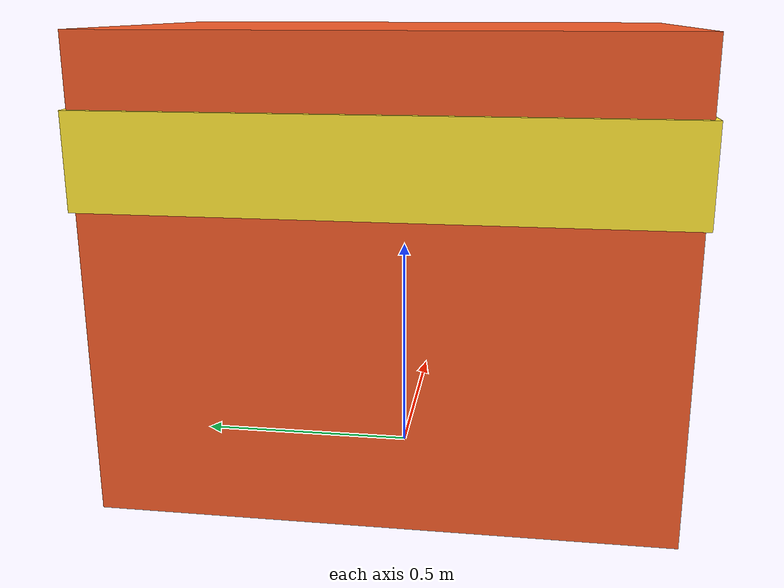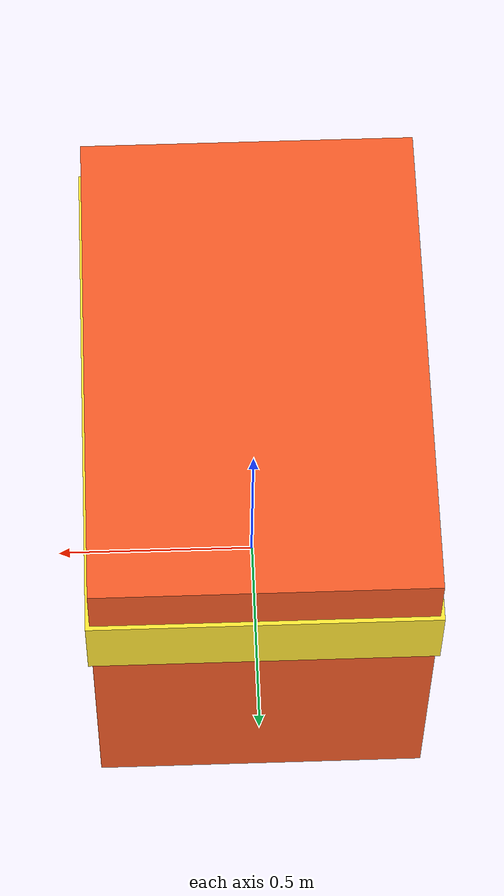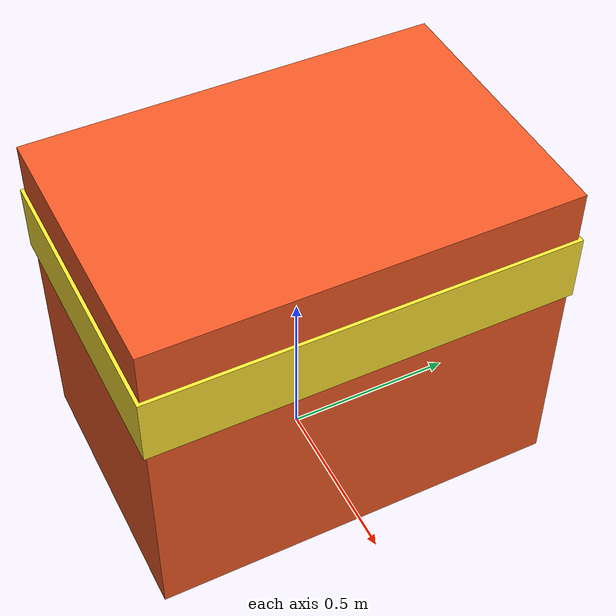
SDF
<?xml version="1.0"?>
<sdf version="1.9">
  <model name="blocked_aisle_obstacle">
    <static>false</static>
    <link name="obstacle_link">
      <pose>0 0 0.5 0 0 0</pose>
      <inertial>
        <mass>50.0</mass>
        <inertia>
          <ixx>10.0</ixx>
          <iyy>10.0</iyy>
          <izz>10.0</izz>
          <ixy>0</ixy>
          <ixz>0</ixz>
          <iyz>0</iyz>
        </inertia>
      </inertial>
      <collision name="collision">
        <geometry>
          <box>
            <size>0.8 1.2 1.0</size>
          </box>
        </geometry>
      </collision>
      <visual name="visual">
        <geometry>
          <box>
            <size>0.8 1.2 1.0</size>
          </box>
        </geometry>
        <material>
          <ambient>0.85 0.25 0.1 1.0</ambient>
          <diffuse>0.95 0.35 0.15 1.0</diffuse>
        </material>
      </visual>
      <!-- Visual hazard marker stripe -->
      <visual name="hazard_stripe">
        <pose>0 0 0.25 0 0 0</pose>
        <geometry>
          <box>
            <size>0.82 1.22 0.2</size>
          </box>
        </geometry>
        <material>
          <ambient>0.9 0.8 0.1 1.0</ambient>
          <diffuse>1.0 0.9 0.2 1.0</diffuse>
        </material>
      </visual>
    </link>
  </model>
</sdf>
